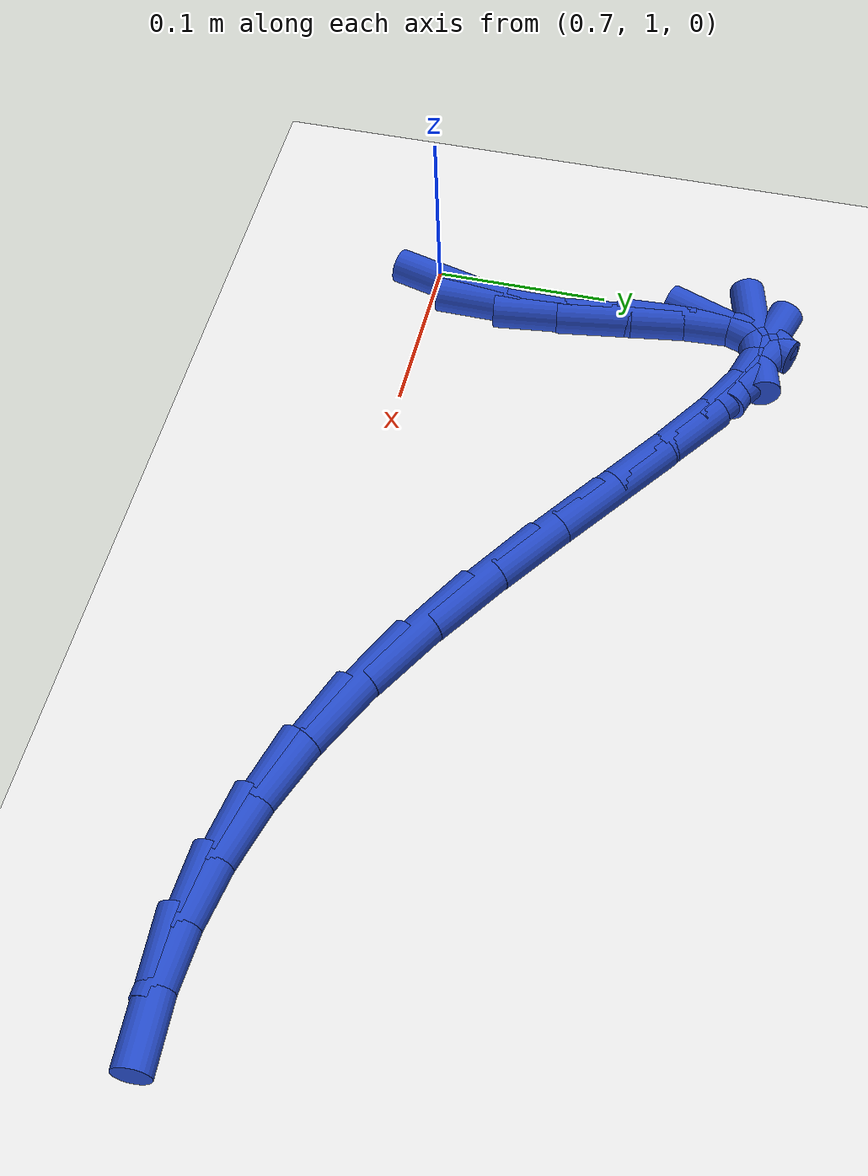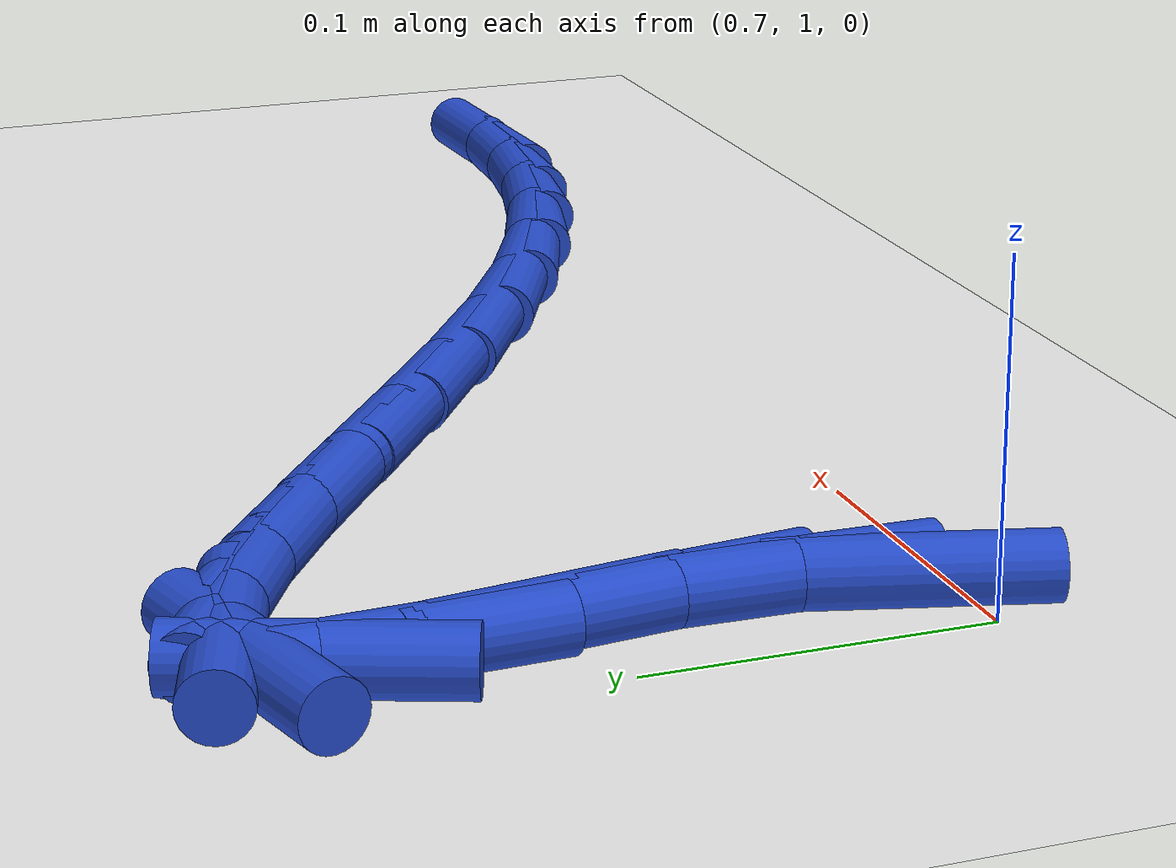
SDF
<sdf version="1.6">
 <world name="default">
  <model name="ground_plane">
   <static>1</static>
   <link name="link">
    <collision name="collision">
     <geometry><plane><normal>0 0 1</normal><size>100 100</size></plane></geometry>
     <surface><friction><ode><mu>100</mu><mu2>50</mu2></ode></friction></surface>
    </collision>
    <visual name="visual">
     <cast_shadows>0</cast_shadows>
     <geometry><plane><normal>0 0 1</normal><size>100 100</size></plane></geometry>
     <material>
      <script><uri>file://media/materials/scripts/gazebo.material</uri><name>Gazebo/WhiteGlow</name></script>
     </material>
    </visual>
   </link>
  </model>
  <model name="line">
   <link name="link_41">
    <pose>0.7184038715531872 1.0165342192341273 0.01 0 1.57 1.3065886197410457</pose>
    <collision name="collision">
     <geometry><cylinder><radius>0.01</radius><length>0.08</length></cylinder></geometry>
    </collision>
    <visual name="visual">
     <material>
      <script><name>Gazebo/Blue</name><uri>file://media/materials/scripts/gazebo.material</uri></script>
     </material>
     <geometry><cylinder><radius>0.01</radius><length>0.08</length></cylinder></geometry>
    </visual>
   </link>
   <link name="link_42">
    <pose>0.7262910460521822 1.0456885218232195 0.01 0 1.57 1.5539494372116864</pose>
    <collision name="collision">
     <geometry><cylinder><radius>0.01</radius><length>0.08</length></cylinder></geometry>
    </collision>
    <visual name="visual">
     <material>
      <script><name>Gazebo/Blue</name><uri>file://media/materials/scripts/gazebo.material</uri></script>
     </material>
     <geometry><cylinder><radius>0.01</radius><length>0.08</length></cylinder></geometry>
    </visual>
   </link>
   <link name="link_43">
    <pose>0.7268709877321838 1.0801095234091158 0.01 0 1.57 -1.4595977136403115</pose>
    <collision name="collision">
     <geometry><cylinder><radius>0.01</radius><length>0.08</length></cylinder></geometry>
    </collision>
    <visual name="visual">
     <material>
      <script><name>Gazebo/Blue</name><uri>file://media/materials/scripts/gazebo.material</uri></script>
     </material>
     <geometry><cylinder><radius>0.01</radius><length>0.08</length></cylinder></geometry>
    </visual>
   </link>
   <link name="link_44">
    <pose>0.7227930524213972 1.1166307825755817 0.01 0 1.57 -1.4338027023843385</pose>
    <collision name="collision">
     <geometry><cylinder><radius>0.01</radius><length>0.08</length></cylinder></geometry>
    </collision>
    <visual name="visual">
     <material>
      <script><name>Gazebo/Blue</name><uri>file://media/materials/scripts/gazebo.material</uri></script>
     </material>
     <geometry><cylinder><radius>0.01</radius><length>0.08</length></cylinder></geometry>
    </visual>
   </link>
   <link name="link_45">
    <pose>0.7181175888915501 1.1505460713646976 0.01 0 1.57 -1.5254897802373781</pose>
    <collision name="collision">
     <geometry><cylinder><radius>0.01</radius><length>0.08</length></cylinder></geometry>
    </collision>
    <visual name="visual">
     <material>
      <script><name>Gazebo/Blue</name><uri>file://media/materials/scripts/gazebo.material</uri></script>
     </material>
     <geometry><cylinder><radius>0.01</radius><length>0.08</length></cylinder></geometry>
    </visual>
   </link>
   <link name="link_46">
    <pose>0.7169118089152868 1.1771416723718424 0.01 0 1.57 1.1968703611762284</pose>
    <collision name="collision">
     <geometry><cylinder><radius>0.01</radius><length>0.08</length></cylinder></geometry>
    </collision>
    <visual name="visual">
     <material>
      <script><name>Gazebo/Blue</name><uri>file://media/materials/scripts/gazebo.material</uri></script>
     </material>
     <geometry><cylinder><radius>0.01</radius><length>0.08</length></cylinder></geometry>
    </visual>
   </link>
   <link name="link_47">
    <pose>0.7228337122523797 1.1922336825140523 0.01 0 1.57 0.25409814333508574</pose>
    <collision name="collision">
     <geometry><cylinder><radius>0.01</radius><length>0.08</length></cylinder></geometry>
    </collision>
    <visual name="visual">
     <material>
      <script><name>Gazebo/Blue</name><uri>file://media/materials/scripts/gazebo.material</uri></script>
     </material>
     <geometry><cylinder><radius>0.01</radius><length>0.08</length></cylinder></geometry>
    </visual>
   </link>
   <link name="link_48">
    <pose>0.7363667322216277 1.1957483682844585 0.01 0 1.57 -0.2992763449349352</pose>
    <collision name="collision">
     <geometry><cylinder><radius>0.01</radius><length>0.08</length></cylinder></geometry>
    </collision>
    <visual name="visual">
     <material>
      <script><name>Gazebo/Blue</name><uri>file://media/materials/scripts/gazebo.material</uri></script>
     </material>
     <geometry><cylinder><radius>0.01</radius><length>0.08</length></cylinder></geometry>
    </visual>
   </link>
   <link name="link_49">
    <pose>0.756510462443299 1.1895331507332327 0.01 0 1.57 -0.50065525260731</pose>
    <collision name="collision">
     <geometry><cylinder><radius>0.01</radius><length>0.08</length></cylinder></geometry>
    </collision>
    <visual name="visual">
     <material>
      <script><name>Gazebo/Blue</name><uri>file://media/materials/scripts/gazebo.material</uri></script>
     </material>
     <geometry><cylinder><radius>0.01</radius><length>0.08</length></cylinder></geometry>
    </visual>
   </link>
   <link name="link_50">
    <pose>0.7822560862648624 1.1754463398454695 0.01 0 1.57 -0.5851285870695462</pose>
    <collision name="collision">
     <geometry><cylinder><radius>0.01</radius><length>0.08</length></cylinder></geometry>
    </collision>
    <visual name="visual">
     <material>
      <script><name>Gazebo/Blue</name><uri>file://media/materials/scripts/gazebo.material</uri></script>
     </material>
     <geometry><cylinder><radius>0.01</radius><length>0.08</length></cylinder></geometry>
    </visual>
   </link>
   <link name="link_51">
    <pose>0.8125947870337872 1.1553462456062638 0.01 0 1.57 -0.6207252338198733</pose>
    <collision name="collision">
     <geometry><cylinder><radius>0.01</radius><length>0.08</length></cylinder></geometry>
    </collision>
    <visual name="visual">
     <material>
      <script><name>Gazebo/Blue</name><uri>file://media/materials/scripts/gazebo.material</uri></script>
     </material>
     <geometry><cylinder><radius>0.01</radius><length>0.08</length></cylinder></geometry>
    </visual>
   </link>
   <link name="link_52">
    <pose>0.8465177480975422 1.1310911780007105 0.01 0 1.57 -0.628929538897971</pose>
    <collision name="collision">
     <geometry><cylinder><radius>0.01</radius><length>0.08</length></cylinder></geometry>
    </collision>
    <visual name="visual">
     <material>
      <script><name>Gazebo/Blue</name><uri>file://media/materials/scripts/gazebo.material</uri></script>
     </material>
     <geometry><cylinder><radius>0.01</radius><length>0.08</length></cylinder></geometry>
    </visual>
   </link>
   <link name="link_53">
    <pose>0.8830161528035964 1.1045394470139043 0.01 0 1.57 -0.6167752892217245</pose>
    <collision name="collision">
     <geometry><cylinder><radius>0.01</radius><length>0.08</length></cylinder></geometry>
    </collision>
    <visual name="visual">
     <material>
      <script><name>Gazebo/Blue</name><uri>file://media/materials/scripts/gazebo.material</uri></script>
     </material>
     <geometry><cylinder><radius>0.01</radius><length>0.08</length></cylinder></geometry>
    </visual>
   </link>
   <link name="link_54">
    <pose>0.9210811844994192 1.0775493626309396 0.01 0 1.57 -0.5847973897527646</pose>
    <collision name="collision">
     <geometry><cylinder><radius>0.01</radius><length>0.08</length></cylinder></geometry>
    </collision>
    <visual name="visual">
     <material>
      <script><name>Gazebo/Blue</name><uri>file://media/materials/scripts/gazebo.material</uri></script>
     </material>
     <geometry><cylinder><radius>0.01</radius><length>0.08</length></cylinder></geometry>
    </visual>
   </link>
   <link name="link_55">
    <pose>0.9597040265324792 1.051979234836912 0.01 0 1.57 -0.5286579283581512</pose>
    <collision name="collision">
     <geometry><cylinder><radius>0.01</radius><length>0.08</length></cylinder></geometry>
    </collision>
    <visual name="visual">
     <material>
      <script><name>Gazebo/Blue</name><uri>file://media/materials/scripts/gazebo.material</uri></script>
     </material>
     <geometry><cylinder><radius>0.01</radius><length>0.08</length></cylinder></geometry>
    </visual>
   </link>
   <link name="link_56">
    <pose>0.9978793618882638 1.0296804249708775 0.01 0 1.57 -0.448992332908829</pose>
    <collision name="collision">
     <geometry><cylinder><radius>0.01</radius><length>0.08</length></cylinder></geometry>
    </collision>
    <visual name="visual">
     <material>
      <script><name>Gazebo/Blue</name><uri>file://media/materials/scripts/gazebo.material</uri></script>
     </material>
     <geometry><cylinder><radius>0.01</radius><length>0.08</length></cylinder></geometry>
    </visual>
   </link>
   <link name="link_57">
    <pose>1.0349458526325543 1.0118213126288893 0.01 0 1.57 -0.3594556458274122</pose>
    <collision name="collision">
     <geometry><cylinder><radius>0.01</radius><length>0.08</length></cylinder></geometry>
    </collision>
    <visual name="visual">
     <material>
      <script><name>Gazebo/Blue</name><uri>file://media/materials/scripts/gazebo.material</uri></script>
     </material>
     <geometry><cylinder><radius>0.01</radius><length>0.08</length></cylinder></geometry>
    </visual>
   </link>
   <link name="link_58">
    <pose>1.0708712421454343 0.9983212158298612 0.01 0 1.57 -0.26247632756812644</pose>
    <collision name="collision">
     <geometry><cylinder><radius>0.01</radius><length>0.08</length></cylinder></geometry>
    </collision>
    <visual name="visual">
     <material>
      <script><name>Gazebo/Blue</name><uri>file://media/materials/scripts/gazebo.material</uri></script>
     </material>
     <geometry><cylinder><radius>0.01</radius><length>0.08</length></cylinder></geometry>
    </visual>
   </link>
   <link name="link_59">
    <pose>1.1056903930555 0.9889661851239498 0.01 0 1.57 -0.15935639312435537</pose>
    <collision name="collision">
     <geometry><cylinder><radius>0.01</radius><length>0.08</length></cylinder></geometry>
    </collision>
    <visual name="visual">
     <material>
      <script><name>Gazebo/Blue</name><uri>file://media/materials/scripts/gazebo.material</uri></script>
     </material>
     <geometry><cylinder><radius>0.01</radius><length>0.08</length></cylinder></geometry>
    </visual>
   </link>
   <link name="link_60">
    <pose>1.139438167991345 0.9835422710613104 0.01 0 1.57 -0.05212885486206602</pose>
    <collision name="collision">
     <geometry><cylinder><radius>0.01</radius><length>0.08</length></cylinder></geometry>
    </collision>
    <visual name="visual">
     <material>
      <script><name>Gazebo/Blue</name><uri>file://media/materials/scripts/gazebo.material</uri></script>
     </material>
     <geometry><cylinder><radius>0.01</radius><length>0.08</length></cylinder></geometry>
    </visual>
   </link>
   <link name="link_61">
    <pose>1.1721494295815653 0.9818355241920991 0.01 0 1.57 0.056593332426725054</pose>
    <collision name="collision">
     <geometry><cylinder><radius>0.01</radius><length>0.08</length></cylinder></geometry>
    </collision>
    <visual name="visual">
     <material>
      <script><name>Gazebo/Blue</name><uri>file://media/materials/scripts/gazebo.material</uri></script>
     </material>
     <geometry><cylinder><radius>0.01</radius><length>0.08</length></cylinder></geometry>
    </visual>
   </link>
  </model>
 </world>
</sdf>
